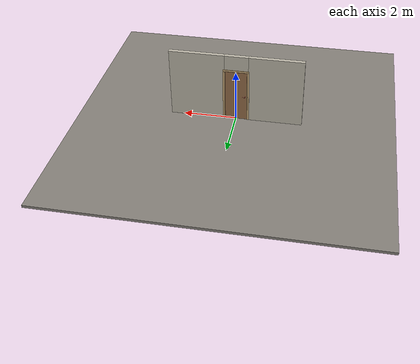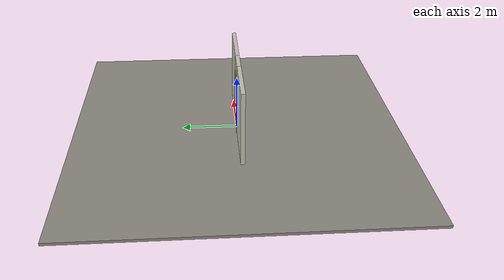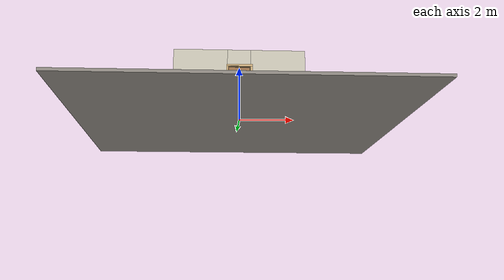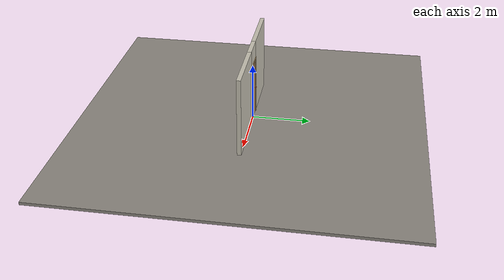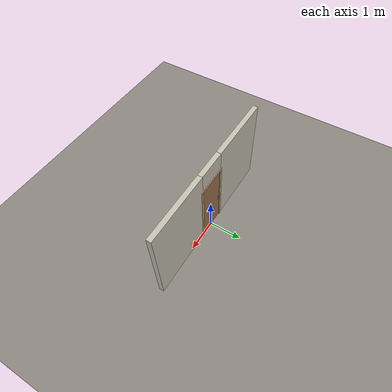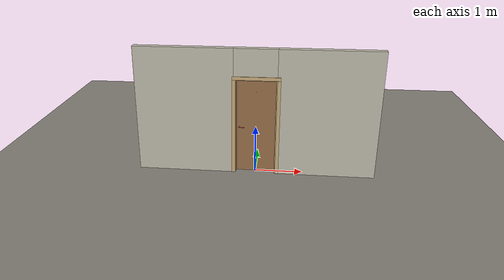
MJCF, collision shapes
<?xml version="1.0" ?>
<mujoco model="db0140_swing_single_full">
  <compiler angle="radian" meshdir="../../hardware" texturedir="../../textures" autolimits="true" inertiafromgeom="false"/>
  <option timestep="0.002" integrator="implicitfast" cone="elliptic" impratio="10" noslip_iterations="3">
    <flag multiccd="enable"/>
  </option>
  <size memory="16M"/>
  <default>
    <geom condim="4" solref="0.005 1" solimp="0.95 0.99 0.001"/>
    <joint solreflimit="0.005 1" solimplimit="0.95 0.99 0.001"/>
    <tendon solreflimit="0.005 1"/>
    <equality solref="0.002 1"/>
  </default>
  <visual>
    <headlight ambient="0.4 0.4 0.4" diffuse="0.7 0.7 0.7" specular="0.2 0.2 0.2"/>
    <quality shadowsize="4096"/>
    <map znear="0.01" zfar="60"/>
  </visual>
  <asset>
    <mesh name="hinge_e53abd72ad" file="hinge_e53abd72ad.obj"/>
    <mesh name="hinge_jamb_c17a76d68c" file="hinge_jamb_c17a76d68c.obj"/>
    <mesh name="lever_748f08efca" file="lever_748f08efca.obj"/>
    <mesh name="wreath_86a3f1bf8b" file="wreath_86a3f1bf8b.obj"/>
    <material name="mat_floor" rgba="0.55 0.53 0.5 1" specular="0.2" shininess="0.15" reflectance="0"/>
    <material name="mat_wall" rgba="0.78 0.76 0.7 1" specular="0.2" shininess="0.1" reflectance="0"/>
    <material name="mat_leaf" rgba="0.62 0.45 0.3 1" specular="0.2" shininess="0.5" reflectance="0"/>
    <material name="mat_hinge" rgba="0.65 0.66 0.68 1" specular="0.74" shininess="0.5" reflectance="0.36"/>
    <material name="mat_op_chrome" rgba="0.9 0.9 0.92 1" specular="0.8" shininess="0.9" reflectance="0.4"/>
    <material name="mat_trim" rgba="0.85 0.66 0.3 1" specular="0.8" shininess="0.75" reflectance="0.4"/>
    <material name="mat_bolt" rgba="0.85 0.66 0.3 1" specular="0.8" shininess="0.75" reflectance="0.4"/>
    <material name="mat_frame" rgba="0.82 0.7 0.5 1" specular="0.2" shininess="0.45" reflectance="0"/>
    <material name="mat_wreath" rgba="0.12 0.3 0.12 1" specular="0.2" shininess="0.05" reflectance="0"/>
    <material name="mat_wreath_hook" rgba="0.85 0.66 0.3 1" specular="0.8" shininess="0.75" reflectance="0.4"/>
    <texture name="skybox" type="skybox" builtin="gradient" rgb1="0.6 0.7 0.85" rgb2="0.9 0.92 0.95" width="256" height="256"/>
  </asset>
  <worldbody>
    <light name="sun" pos="1.5 -2.5 4" dir="-0.3 0.5 -0.8" directional="true" diffuse="0.8 0.8 0.8" specular="0.3 0.3 0.3" castshadow="true"/>
    <light name="fill" pos="-1.5 2.5 3" dir="0.3 -0.5 -0.7" directional="true" diffuse="0.35 0.35 0.4" castshadow="false"/>
    <camera name="robot_view" pos="0 -2.587687 1.734312" xyaxes="1 0 0 0 0.26963 0.962964" fovy="52"/>
    <camera name="far_view" pos="0 2.496687 1.734312" xyaxes="-1 0 0 0 -0.26963 0.962964" fovy="52"/>
    <camera name="iso" pos="-1.932062 -2.180938 2.141063" xyaxes="0.741536 -0.670913 0 0.242917 0.268487 0.932151" fovy="46"/>
    <camera name="detail_handle" pos="-0.0764 -0.875 1.296" xyaxes="0.97561 0.219512 0 -0.070934 0.315262 0.94635" fovy="38"/>
    <geom name="floor" type="box" size="6 6 0.05" pos="0 0 -0.05" material="mat_floor" group="0" contype="1" conaffinity="1" friction="0.8 0.005 0.0001" density="2400"/>
    <geom name="wall_left" type="box" size="1.0205 0.0725 1.35" pos="-1.4795 -0.0455 1.35" material="mat_wall" group="0" contype="1" conaffinity="1" friction="0.6 0.005 0.0001" density="800"/>
    <geom name="wall_right" type="box" size="1.0355 0.0725 1.35" pos="1.4645 -0.0455 1.35" material="mat_wall" group="0" contype="1" conaffinity="1" friction="0.6 0.005 0.0001" density="800"/>
    <geom name="wall_header" type="box" size="0.444 0.0725 0.303" pos="-0.015 -0.0455 2.397" material="mat_wall" group="0" contype="1" conaffinity="1" friction="0.6 0.005 0.0001" density="800"/>
    <geom name="hinge_0_jamb" type="mesh" mesh="hinge_jamb_c17a76d68c" pos="0.407 0.027 0.259" quat="0 0 0 1" material="mat_hinge" group="1" contype="0" conaffinity="0" density="7850"/>
    <geom name="hinge_1_jamb" type="mesh" mesh="hinge_jamb_c17a76d68c" pos="0.407 0.027 1.025" quat="0 0 0 1" material="mat_hinge" group="1" contype="0" conaffinity="0" density="7850"/>
    <geom name="hinge_2_jamb" type="mesh" mesh="hinge_jamb_c17a76d68c" pos="0.407 0.027 1.861" quat="0 0 0 1" material="mat_hinge" group="1" contype="0" conaffinity="0" density="7850"/>
    <geom name="jamb_hinge" type="box" size="0.0095 0.0725 1.0225" pos="0.4195 -0.0455 1.0225" material="mat_frame" group="0" contype="1" conaffinity="1" friction="0.6 0.005 0.0001" density="400"/>
    <geom name="strike_1016_wall_n" type="box" size="0.0245 0.055075 0.0167" pos="-0.4345 -0.062925 1.016" material="mat_frame" group="0" contype="1" conaffinity="1" friction="0.6 0.005 0.0001" density="400"/>
    <geom name="strike_1016_wall_p" type="box" size="0.0245 0.008 0.0167" pos="-0.4345 0.01585 1.016" material="mat_frame" group="0" contype="1" conaffinity="1" friction="0.6 0.005 0.0001" density="400"/>
    <geom name="strike_1016_ramp" type="box" size="0.0245 0.01649 0.0167" pos="-0.439136 0.028673 1.016" quat="0.977148 0 0 0.212558" material="mat_frame" group="0" contype="1" conaffinity="1" friction="0.12 0.005 0.0001" density="400"/>
    <geom name="strike_1016_back" type="box" size="0.01615 0.00785 0.0167" pos="-0.44285 0 1.016" material="mat_frame" group="0" contype="1" conaffinity="1" friction="0.6 0.005 0.0001" density="400"/>
    <geom name="jamb_strike_0" type="box" size="0.0245 0.0725 0.49965" pos="-0.4345 -0.0455 0.49965" material="mat_frame" group="0" contype="1" conaffinity="1" friction="0.6 0.005 0.0001" density="400"/>
    <geom name="jamb_strike_1" type="box" size="0.0245 0.0725 0.50615" pos="-0.4345 -0.0455 1.53885" material="mat_frame" group="0" contype="1" conaffinity="1" friction="0.6 0.005 0.0001" density="400"/>
    <geom name="jamb_head" type="box" size="0.444 0.0725 0.0095" pos="-0.015 -0.0455 2.0545" material="mat_frame" group="0" contype="1" conaffinity="1" friction="0.6 0.005 0.0001" density="400"/>
    <geom name="head_stud" type="box" size="0.444 0.0725 0.015" pos="-0.015 -0.0455 2.079" material="mat_wall" group="0" contype="1" conaffinity="1" friction="0.6 0.005 0.0001" density="500"/>
    <geom name="stop_hinge" type="box" size="0.0055 0.016 1.0225" pos="0.4045 -0.0365 1.0225" material="mat_frame" group="0" contype="1" conaffinity="1" friction="0.6 0.005 0.0001" density="400"/>
    <geom name="stop_strike" type="box" size="0.0055 0.016 1.0225" pos="-0.4045 -0.0365 1.0225" material="mat_frame" group="0" contype="1" conaffinity="1" friction="0.6 0.005 0.0001" density="400"/>
    <geom name="stop_head" type="box" size="0.41 0.016 0.0055" pos="0 -0.0365 2.0395" material="mat_frame" group="0" contype="1" conaffinity="1" friction="0.6 0.005 0.0001" density="400"/>
    <geom name="casing_l_n" type="box" size="0.035 0.008 1.032" pos="-0.459 -0.126 1.0225" material="mat_frame" group="2" contype="0" conaffinity="0" density="400"/>
    <geom name="casing_r_n" type="box" size="0.035 0.008 1.032" pos="0.459 -0.126 1.0225" material="mat_frame" group="2" contype="0" conaffinity="0" density="400"/>
    <geom name="casing_h_n" type="box" size="0.494 0.008 0.035" pos="0 -0.126 2.094" material="mat_frame" group="2" contype="0" conaffinity="0" density="400"/>
    <geom name="casing_l_p" type="box" size="0.035 0.008 1.032" pos="-0.459 0.035 1.0225" material="mat_frame" group="2" contype="0" conaffinity="0" density="400"/>
    <geom name="casing_r_p" type="box" size="0.035 0.008 1.032" pos="0.459 0.035 1.0225" material="mat_frame" group="2" contype="0" conaffinity="0" density="400"/>
    <geom name="casing_h_p" type="box" size="0.494 0.008 0.035" pos="0 0.035 2.094" material="mat_frame" group="2" contype="0" conaffinity="0" density="400"/>
    <site name="approach_point" pos="0 -1.5 0" quat="1 0 0 0" size="0.05" rgba="0.2 0.9 0.2 0.5" group="4"/>
    <site name="goal_point" pos="0 1.5 0" quat="1 0 0 0" size="0.05" rgba="0.2 0.9 0.2 0.5" group="4"/>
    <site name="door_plane_center" pos="0 0 1.0225" quat="1 0 0 0" size="0.02" rgba="0.2 0.9 0.2 0.5" group="4"/>
    <body name="leaf" pos="0.41 0 0">
      <inertial pos="-0.405902 -0.002024 1.042859" mass="47.560783" quat="0.498863 0.501174 -0.500555 0.499404" diaginertia="2.631329172 16.397922153 19.001715007"/>
      <joint name="leaf_hinge" type="hinge" axis="0 0 -1" pos="-0.003 0.027 0" limited="true" range="0 2.356194" damping="0.210326" frictionloss="1.16853" armature="0.02"/>
      <geom name="leaf_slab" type="box" size="0.4065 0.02 1.016" pos="-0.4095 0 1.025" material="mat_leaf" group="0" contype="1" conaffinity="1" friction="0.4 0.005 0.0001" density="1"/>
      <geom name="hinge_0" type="mesh" mesh="hinge_e53abd72ad" pos="-0.003 0.027 0.259" quat="0 0 0 1" material="mat_hinge" group="1" contype="0" conaffinity="0" density="7850"/>
      <geom name="hinge_1" type="mesh" mesh="hinge_e53abd72ad" pos="-0.003 0.027 1.025" quat="0 0 0 1" material="mat_hinge" group="1" contype="0" conaffinity="0" density="7850"/>
      <geom name="hinge_2" type="mesh" mesh="hinge_e53abd72ad" pos="-0.003 0.027 1.861" quat="0 0 0 1" material="mat_hinge" group="1" contype="0" conaffinity="0" density="7850"/>
      <geom name="leaf_latch_bolt_faceplate" type="box" size="0.0006 0.01235 0.0267" pos="-0.8154 0 1.016" material="mat_bolt" group="1" contype="0" conaffinity="0" density="8500"/>
      <geom name="wreath" type="mesh" mesh="wreath_86a3f1bf8b" pos="-0.4095 -0.02 1.59396" quat="0 0 -0.707107 0.707107" material="mat_wreath" group="2" contype="0" conaffinity="0" density="200"/>
      <geom name="wreath_hook" type="cylinder" size="0.004 0.008" pos="-0.4095 -0.027 1.78196" quat="0.707107 -0.707107 0 0" material="mat_wreath_hook" group="2" contype="0" conaffinity="0" density="8500"/>
      <site name="leaf_edge_mid" pos="-0.816 0 1.016" quat="1 0 0 0" size="0.02" rgba="0.2 0.9 0.2 0.5" group="4"/>
      <body name="leaf_handle" pos="-0.756 0 1.016">
        <inertial pos="0.024289 0 0" mass="0.844246" quat="0.707107 0 0 -0.707107" diaginertia="0.00118518 0.003037122 0.004085535"/>
        <joint name="leaf_handle_hinge" type="hinge" axis="0 1 0" limited="true" range="0 0.87" damping="0.205085" frictionloss="0.04" stiffness="0.9" springref="-0.444444" armature="0.01"/>
        <geom name="leaf_handle_spindle" type="cylinder" size="0.006 0.028" pos="0 0 0" quat="0.707107 -0.707107 0 0" material="mat_op_chrome" group="1" contype="0" conaffinity="0" density="7850"/>
        <geom name="leaf_handle_lever_n" type="mesh" mesh="lever_748f08efca" pos="0 -0.02 0" quat="0 0 -0.707107 0.707107" material="mat_op_chrome" group="1" contype="0" conaffinity="0" density="3000"/>
        <geom name="leaf_handle_lever_col_n" type="capsule" size="0.008 0.048" pos="0.056 -0.075 0" quat="0.707107 0 0.707107 0" material="mat_op_chrome" group="3" contype="1" conaffinity="1" rgba="0.8 0.3 0.3 0.25" friction="0.7 0.01 0.0001" density="3000"/>
        <geom name="leaf_handle_hub_col_n" type="cylinder" size="0.012 0.022" pos="0 -0.05 0" quat="0.707107 -0.707107 0 0" material="mat_op_chrome" group="3" contype="1" conaffinity="1" rgba="0.8 0.3 0.3 0.25" friction="0.6 0.005 0.0001" density="3000"/>
        <geom name="leaf_handle_lever_p" type="mesh" mesh="lever_748f08efca" pos="0 0.02 0" quat="0 0 0.707107 0.707107" material="mat_op_chrome" group="1" contype="0" conaffinity="0" density="3000"/>
        <geom name="leaf_handle_lever_col_p" type="capsule" size="0.008 0.048" pos="0.056 0.075 0" quat="0.707107 0 0.707107 0" material="mat_op_chrome" group="3" contype="1" conaffinity="1" rgba="0.8 0.3 0.3 0.25" friction="0.7 0.01 0.0001" density="3000"/>
        <geom name="leaf_handle_hub_col_p" type="cylinder" size="0.012 0.022" pos="0 0.05 0" quat="0.707107 -0.707107 0 0" material="mat_op_chrome" group="3" contype="1" conaffinity="1" rgba="0.8 0.3 0.3 0.25" friction="0.6 0.005 0.0001" density="3000"/>
        <site name="leaf_handle_grip_n" pos="0.0896 -0.075 0" quat="1 0 0 0" size="0.012" rgba="0.2 0.9 0.2 0.5" group="4"/>
        <site name="leaf_handle_grip_p" pos="0.0896 0.075 0" quat="1 0 0 0" size="0.012" rgba="0.2 0.9 0.2 0.5" group="4"/>
      </body>
      <body name="leaf_latch_bolt" pos="-0.816 0 1.016">
        <inertial pos="0.00865 0 0" mass="0.041419" quat="0.92388 0.382683 0 0" diaginertia="0.000000798 0.000005598 0.000005598"/>
        <joint name="leaf_latch_bolt_slide" type="slide" axis="1 0 0" limited="true" range="0 0.0127" damping="2" frictionloss="0.3" stiffness="300" springref="-0.008333" armature="0.1"/>
        <geom name="leaf_latch_bolt_capsule" type="capsule" size="0.00635 0.015" pos="0.00865 0 0" quat="0.707107 0 -0.707107 0" material="mat_bolt" group="0" contype="1" conaffinity="1" friction="0.2 0.005 0.0001" density="8500"/>
      </body>
    </body>
  </worldbody>
  <tendon>
    <fixed name="leaf_latch_bolt_coupling" limited="true" range="0 10">
      <joint joint="leaf_latch_bolt_slide" coef="1"/>
      <joint joint="leaf_handle_hinge" coef="-0.016076"/>
    </fixed>
  </tendon>
  <sensor>
    <jointpos name="leaf_hinge_pos" joint="leaf_hinge"/>
    <jointvel name="leaf_hinge_vel" joint="leaf_hinge"/>
    <jointpos name="leaf_handle_hinge_pos" joint="leaf_handle_hinge"/>
    <jointvel name="leaf_handle_hinge_vel" joint="leaf_handle_hinge"/>
    <jointpos name="leaf_latch_bolt_slide_pos" joint="leaf_latch_bolt_slide"/>
    <jointvel name="leaf_latch_bolt_slide_vel" joint="leaf_latch_bolt_slide"/>
  </sensor>
</mujoco>
